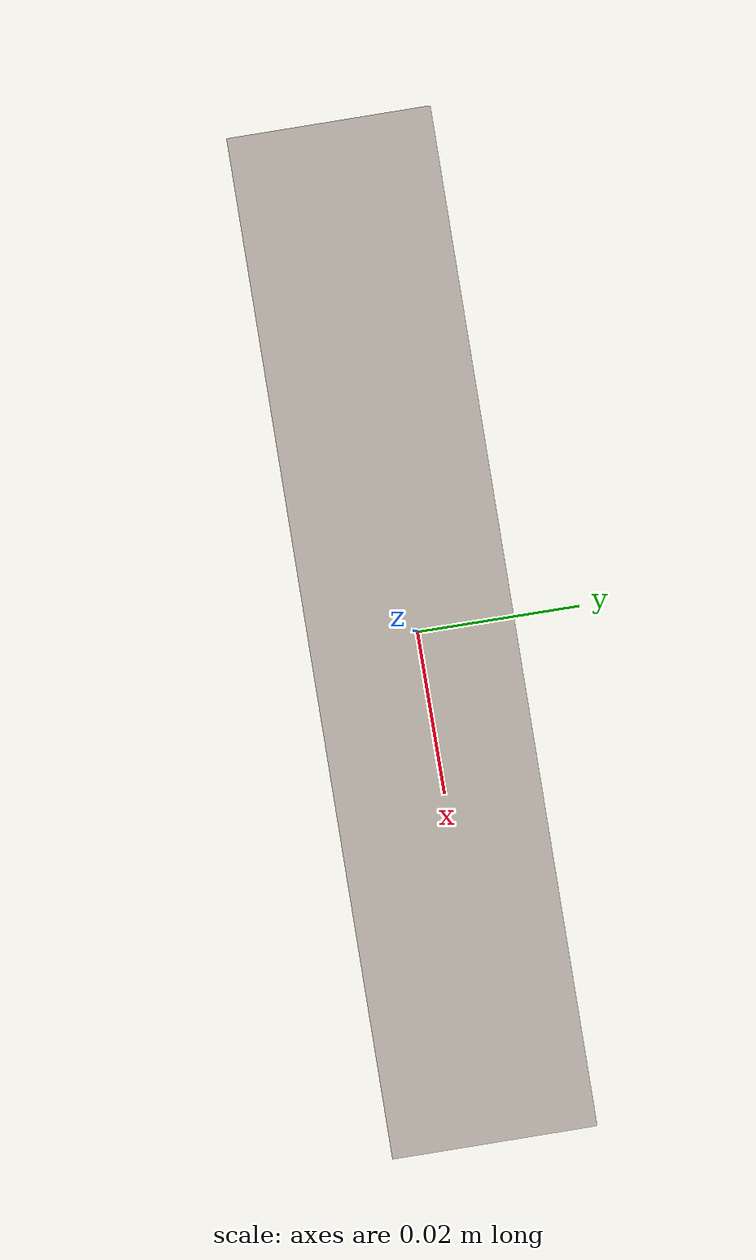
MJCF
<mujoco model="block">
  <default>
    <default class="visual">
      <geom group="2" type="mesh" contype="0" conaffinity="0"/>
    </default>
    <default class="collision">
      <geom group="3" type="mesh"/>
    </default>
  </default>
  <asset>
    <texture type="2d" name="texture" file="texture.png"/>
    <material name="Material" texture="texture" specular="0.5" shininess="0.25"/>
    <mesh file="block.obj"/>
  </asset>
  <worldbody>
    <body name="block">
      <freejoint/>
      <geom material="Material" mesh="block" class="visual"/>
      <geom mesh="block" class="collision"/>
    </body>
  </worldbody>
</mujoco>
